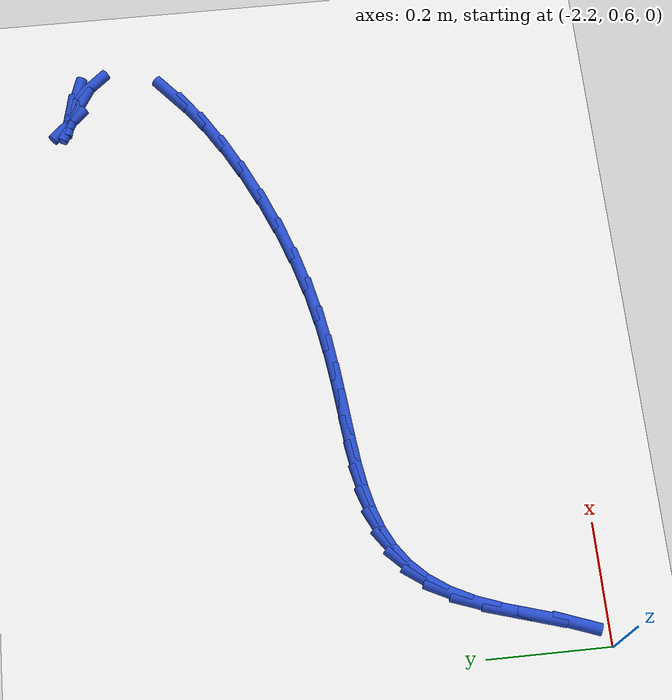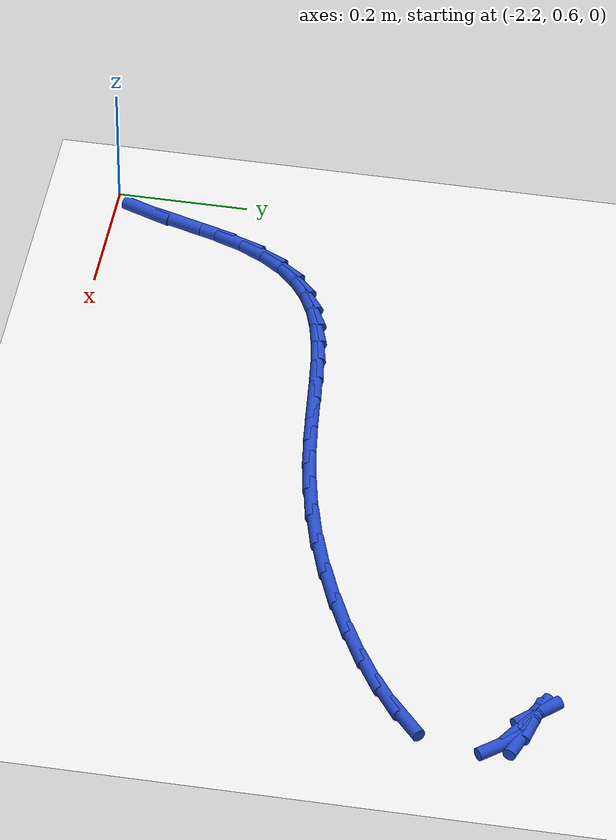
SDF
<sdf version="1.6">
 <world name="default">
  <model name="ground_plane">
   <static>1</static>
   <link name="link">
    <collision name="collision">
     <geometry><plane><normal>0 0 1</normal><size>100 100</size></plane></geometry>
     <surface><friction><ode><mu>100</mu><mu2>50</mu2></ode></friction></surface>
    </collision>
    <visual name="visual">
     <cast_shadows>0</cast_shadows>
     <geometry><plane><normal>0 0 1</normal><size>100 100</size></plane></geometry>
     <material>
      <script><uri>file://media/materials/scripts/gazebo.material</uri><name>Gazebo/WhiteGlow</name></script>
     </material>
    </visual>
   </link>
  </model>
  <model name="line">
   <link name="link_43">
    <pose>-1.1570098385927952 1.389143280055641 0.01 0 1.57 -0.3165778140580224</pose>
    <collision name="collision">
     <geometry><cylinder><radius>0.01</radius><length>0.08</length></cylinder></geometry>
    </collision>
    <visual name="visual">
     <material>
      <script><name>Gazebo/Blue</name><uri>file://media/materials/scripts/gazebo.material</uri></script>
     </material>
     <geometry><cylinder><radius>0.01</radius><length>0.08</length></cylinder></geometry>
    </visual>
   </link>
   <link name="link_44">
    <pose>-1.1902804068994681 1.4000425747041239 0.01 0 1.57 -0.21723465099847283</pose>
    <collision name="collision">
     <geometry><cylinder><radius>0.01</radius><length>0.08</length></cylinder></geometry>
    </collision>
    <visual name="visual">
     <material>
      <script><name>Gazebo/Blue</name><uri>file://media/materials/scripts/gazebo.material</uri></script>
     </material>
     <geometry><cylinder><radius>0.01</radius><length>0.08</length></cylinder></geometry>
    </visual>
   </link>
   <link name="link_45">
    <pose>-1.2066322150286655 1.4036517061660783 0.01 0 1.57 -0.8059865305686704</pose>
    <collision name="collision">
     <geometry><cylinder><radius>0.01</radius><length>0.08</length></cylinder></geometry>
    </collision>
    <visual name="visual">
     <material>
      <script><name>Gazebo/Blue</name><uri>file://media/materials/scripts/gazebo.material</uri></script>
     </material>
     <geometry><cylinder><radius>0.01</radius><length>0.08</length></cylinder></geometry>
    </visual>
   </link>
   <link name="link_46">
    <pose>-1.2020361313585717 1.39886236460846 0.01 0 1.57 -0.45744773224326546</pose>
    <collision name="collision">
     <geometry><cylinder><radius>0.01</radius><length>0.08</length></cylinder></geometry>
    </collision>
    <visual name="visual">
     <material>
      <script><name>Gazebo/Blue</name><uri>file://media/materials/scripts/gazebo.material</uri></script>
     </material>
     <geometry><cylinder><radius>0.01</radius><length>0.08</length></cylinder></geometry>
    </visual>
   </link>
   <link name="link_47">
    <pose>-1.1732487988447886 1.384691109133771 0.01 0 1.57 -0.5398095295319212</pose>
    <collision name="collision">
     <geometry><cylinder><radius>0.01</radius><length>0.08</length></cylinder></geometry>
    </collision>
    <visual name="visual">
     <material>
      <script><name>Gazebo/Blue</name><uri>file://media/materials/scripts/gazebo.material</uri></script>
     </material>
     <geometry><cylinder><radius>0.01</radius><length>0.08</length></cylinder></geometry>
    </visual>
   </link>
   <link name="link_48">
    <pose>-1.1378557610351032 1.3634846363657314 0.01 0 1.57 -0.8729499971255757</pose>
    <collision name="collision">
     <geometry><cylinder><radius>0.01</radius><length>0.08</length></cylinder></geometry>
    </collision>
    <visual name="visual">
     <material>
      <script><name>Gazebo/Blue</name><uri>file://media/materials/scripts/gazebo.material</uri></script>
     </material>
     <geometry><cylinder><radius>0.01</radius><length>0.08</length></cylinder></geometry>
    </visual>
   </link>
   <link name="link_53">
    <pose>-1.1641207812996137 1.2190325511779927 0.01 0 1.57 0.7139609230397266</pose>
    <collision name="collision">
     <geometry><cylinder><radius>0.01</radius><length>0.08</length></cylinder></geometry>
    </collision>
    <visual name="visual">
     <material>
      <script><name>Gazebo/Blue</name><uri>file://media/materials/scripts/gazebo.material</uri></script>
     </material>
     <geometry><cylinder><radius>0.01</radius><length>0.08</length></cylinder></geometry>
    </visual>
   </link>
   <link name="link_54">
    <pose>-1.2010580317236055 1.1870286605768579 0.01 0 1.57 0.6213254055115245</pose>
    <collision name="collision">
     <geometry><cylinder><radius>0.01</radius><length>0.08</length></cylinder></geometry>
    </collision>
    <visual name="visual">
     <material>
      <script><name>Gazebo/Blue</name><uri>file://media/materials/scripts/gazebo.material</uri></script>
     </material>
     <geometry><cylinder><radius>0.01</radius><length>0.08</length></cylinder></geometry>
    </visual>
   </link>
   <link name="link_55">
    <pose>-1.2451575643478734 1.155457283797192 0.01 0 1.57 0.5496056958077886</pose>
    <collision name="collision">
     <geometry><cylinder><radius>0.01</radius><length>0.08</length></cylinder></geometry>
    </collision>
    <visual name="visual">
     <material>
      <script><name>Gazebo/Blue</name><uri>file://media/materials/scripts/gazebo.material</uri></script>
     </material>
     <geometry><cylinder><radius>0.01</radius><length>0.08</length></cylinder></geometry>
    </visual>
   </link>
   <link name="link_56">
    <pose>-1.2949626077766645 1.1249485658429943 0.01 0 1.57 0.4897733787237614</pose>
    <collision name="collision">
     <geometry><cylinder><radius>0.01</radius><length>0.08</length></cylinder></geometry>
    </collision>
    <visual name="visual">
     <material>
      <script><name>Gazebo/Blue</name><uri>file://media/materials/scripts/gazebo.material</uri></script>
     </material>
     <geometry><cylinder><radius>0.01</radius><length>0.08</length></cylinder></geometry>
    </visual>
   </link>
   <link name="link_57">
    <pose>-1.3490163906142287 1.0961326517182635 0.01 0 1.57 0.43612069820958027</pose>
    <collision name="collision">
     <geometry><cylinder><radius>0.01</radius><length>0.08</length></cylinder></geometry>
    </collision>
    <visual name="visual">
     <material>
      <script><name>Gazebo/Blue</name><uri>file://media/materials/scripts/gazebo.material</uri></script>
     </material>
     <geometry><cylinder><radius>0.01</radius><length>0.08</length></cylinder></geometry>
    </visual>
   </link>
   <link name="link_58">
    <pose>-1.4058621414648134 1.0696396864269995 0.01 0 1.57 0.384463527308074</pose>
    <collision name="collision">
     <geometry><cylinder><radius>0.01</radius><length>0.08</length></cylinder></geometry>
    </collision>
    <visual name="visual">
     <material>
      <script><name>Gazebo/Blue</name><uri>file://media/materials/scripts/gazebo.material</uri></script>
     </material>
     <geometry><cylinder><radius>0.01</radius><length>0.08</length></cylinder></geometry>
    </visual>
   </link>
   <link name="link_59">
    <pose>-1.4640430889326659 1.046099814973201 0.01 0 1.57 0.3310764100350629</pose>
    <collision name="collision">
     <geometry><cylinder><radius>0.01</radius><length>0.08</length></cylinder></geometry>
    </collision>
    <visual name="visual">
     <material>
      <script><name>Gazebo/Blue</name><uri>file://media/materials/scripts/gazebo.material</uri></script>
     </material>
     <geometry><cylinder><radius>0.01</radius><length>0.08</length></cylinder></geometry>
    </visual>
   </link>
   <link name="link_60">
    <pose>-1.5221024616220364 1.0261431823608673 0.01 0 1.57 0.27234269560298263</pose>
    <collision name="collision">
     <geometry><cylinder><radius>0.01</radius><length>0.08</length></cylinder></geometry>
    </collision>
    <visual name="visual">
     <material>
      <script><name>Gazebo/Blue</name><uri>file://media/materials/scripts/gazebo.material</uri></script>
     </material>
     <geometry><cylinder><radius>0.01</radius><length>0.08</length></cylinder></geometry>
    </visual>
   </link>
   <link name="link_61">
    <pose>-1.5786220744940083 1.0103582768501222 0.01 0 1.57 0.21402211408506638</pose>
    <collision name="collision">
     <geometry><cylinder><radius>0.01</radius><length>0.08</length></cylinder></geometry>
    </collision>
    <visual name="visual">
     <material>
      <script><name>Gazebo/Blue</name><uri>file://media/materials/scripts/gazebo.material</uri></script>
     </material>
     <geometry><cylinder><radius>0.01</radius><length>0.08</length></cylinder></geometry>
    </visual>
   </link>
   <link name="link_62">
    <pose>-1.6328993216077003 0.9985610676644956 0.01 0 1.57 0.16542133441956647</pose>
    <collision name="collision">
     <geometry><cylinder><radius>0.01</radius><length>0.08</length></cylinder></geometry>
    </collision>
    <visual name="visual">
     <material>
      <script><name>Gazebo/Blue</name><uri>file://media/materials/scripts/gazebo.material</uri></script>
     </material>
     <geometry><cylinder><radius>0.01</radius><length>0.08</length></cylinder></geometry>
    </visual>
   </link>
   <link name="link_63">
    <pose>-1.684862985805638 0.9898858944829764 0.01 0 1.57 0.1291583888164905</pose>
    <collision name="collision">
     <geometry><cylinder><radius>0.01</radius><length>0.08</length></cylinder></geometry>
    </collision>
    <visual name="visual">
     <material>
      <script><name>Gazebo/Blue</name><uri>file://media/materials/scripts/gazebo.material</uri></script>
     </material>
     <geometry><cylinder><radius>0.01</radius><length>0.08</length></cylinder></geometry>
    </visual>
   </link>
   <link name="link_64">
    <pose>-1.7344635154815178 0.983443707465824 0.01 0 1.57 0.1076241426292096</pose>
    <collision name="collision">
     <geometry><cylinder><radius>0.01</radius><length>0.08</length></cylinder></geometry>
    </collision>
    <visual name="visual">
     <material>
      <script><name>Gazebo/Blue</name><uri>file://media/materials/scripts/gazebo.material</uri></script>
     </material>
     <geometry><cylinder><radius>0.01</radius><length>0.08</length></cylinder></geometry>
    </visual>
   </link>
   <link name="link_65">
    <pose>-1.781651359029034 0.9783454567732975 0.01 0 1.57 0.1034483168269459</pose>
    <collision name="collision">
     <geometry><cylinder><radius>0.01</radius><length>0.08</length></cylinder></geometry>
    </collision>
    <visual name="visual">
     <material>
      <script><name>Gazebo/Blue</name><uri>file://media/materials/scripts/gazebo.material</uri></script>
     </material>
     <geometry><cylinder><radius>0.01</radius><length>0.08</length></cylinder></geometry>
    </visual>
   </link>
   <link name="link_66">
    <pose>-1.8263769648418817 0.9737020925656564 0.01 0 1.57 0.11970610305795841</pose>
    <collision name="collision">
     <geometry><cylinder><radius>0.01</radius><length>0.08</length></cylinder></geometry>
    </collision>
    <visual name="visual">
     <material>
      <script><name>Gazebo/Blue</name><uri>file://media/materials/scripts/gazebo.material</uri></script>
     </material>
     <geometry><cylinder><radius>0.01</radius><length>0.08</length></cylinder></geometry>
    </visual>
   </link>
   <link name="link_67">
    <pose>-1.8685907813137566 0.9686245650031597 0.01 0 1.57 0.16004044790419905</pose>
    <collision name="collision">
     <geometry><cylinder><radius>0.01</radius><length>0.08</length></cylinder></geometry>
    </collision>
    <visual name="visual">
     <material>
      <script><name>Gazebo/Blue</name><uri>file://media/materials/scripts/gazebo.material</uri></script>
     </material>
     <geometry><cylinder><radius>0.01</radius><length>0.08</length></cylinder></geometry>
    </visual>
   </link>
   <link name="link_68">
    <pose>-1.9082432568383525 0.9622238242460667 0.01 0 1.57 0.22846288739029555</pose>
    <collision name="collision">
     <geometry><cylinder><radius>0.01</radius><length>0.08</length></cylinder></geometry>
    </collision>
    <visual name="visual">
     <material>
      <script><name>Gazebo/Blue</name><uri>file://media/materials/scripts/gazebo.material</uri></script>
     </material>
     <geometry><cylinder><radius>0.01</radius><length>0.08</length></cylinder></geometry>
    </visual>
   </link>
   <link name="link_69">
    <pose>-1.9452848398093665 0.953610820454637 0.01 0 1.57 0.3283831075032461</pose>
    <collision name="collision">
     <geometry><cylinder><radius>0.01</radius><length>0.08</length></cylinder></geometry>
    </collision>
    <visual name="visual">
     <material>
      <script><name>Gazebo/Blue</name><uri>file://media/materials/scripts/gazebo.material</uri></script>
     </material>
     <geometry><cylinder><radius>0.01</radius><length>0.08</length></cylinder></geometry>
    </visual>
   </link>
   <link name="link_70">
    <pose>-1.9796659786204909 0.9418965037891289 0.01 0 1.57 0.46033586480324795</pose>
    <collision name="collision">
     <geometry><cylinder><radius>0.01</radius><length>0.08</length></cylinder></geometry>
    </collision>
    <visual name="visual">
     <material>
      <script><name>Gazebo/Blue</name><uri>file://media/materials/scripts/gazebo.material</uri></script>
     </material>
     <geometry><cylinder><radius>0.01</radius><length>0.08</length></cylinder></geometry>
    </visual>
   </link>
   <link name="link_71">
    <pose>-2.0113371216654237 0.9261918244098029 0.01 0 1.57 0.6187122047595729</pose>
    <collision name="collision">
     <geometry><cylinder><radius>0.01</radius><length>0.08</length></cylinder></geometry>
    </collision>
    <visual name="visual">
     <material>
      <script><name>Gazebo/Blue</name><uri>file://media/materials/scripts/gazebo.material</uri></script>
     </material>
     <geometry><cylinder><radius>0.01</radius><length>0.08</length></cylinder></geometry>
    </visual>
   </link>
   <link name="link_72">
    <pose>-2.0402487173378585 0.9056077324769174 0.01 0 1.57 0.7901652112512412</pose>
    <collision name="collision">
     <geometry><cylinder><radius>0.01</radius><length>0.08</length></cylinder></geometry>
    </collision>
    <visual name="visual">
     <material>
      <script><name>Gazebo/Blue</name><uri>file://media/materials/scripts/gazebo.material</uri></script>
     </material>
     <geometry><cylinder><radius>0.01</radius><length>0.08</length></cylinder></geometry>
    </visual>
   </link>
   <link name="link_73">
    <pose>-2.066351214031491 0.8792551781507323 0.01 0 1.57 0.957294448054518</pose>
    <collision name="collision">
     <geometry><cylinder><radius>0.01</radius><length>0.08</length></cylinder></geometry>
    </collision>
    <visual name="visual">
     <material>
      <script><name>Gazebo/Blue</name><uri>file://media/materials/scripts/gazebo.material</uri></script>
     </material>
     <geometry><cylinder><radius>0.01</radius><length>0.08</length></cylinder></geometry>
    </visual>
   </link>
   <link name="link_74">
    <pose>-2.0895950601400153 0.846245111591506 0.01 0 1.57 1.1060185019705449</pose>
    <collision name="collision">
     <geometry><cylinder><radius>0.01</radius><length>0.08</length></cylinder></geometry>
    </collision>
    <visual name="visual">
     <material>
      <script><name>Gazebo/Blue</name><uri>file://media/materials/scripts/gazebo.material</uri></script>
     </material>
     <geometry><cylinder><radius>0.01</radius><length>0.08</length></cylinder></geometry>
    </visual>
   </link>
   <link name="link_75">
    <pose>-2.109930704057128 0.8056884829594981 0.01 0 1.57 1.2240671550056765</pose>
    <collision name="collision">
     <geometry><cylinder><radius>0.01</radius><length>0.08</length></cylinder></geometry>
    </collision>
    <visual name="visual">
     <material>
      <script><name>Gazebo/Blue</name><uri>file://media/materials/scripts/gazebo.material</uri></script>
     </material>
     <geometry><cylinder><radius>0.01</radius><length>0.08</length></cylinder></geometry>
    </visual>
   </link>
   <link name="link_76">
    <pose>-2.1274466192430586 0.757211752561746 0.01 0 1.57 1.2807468877456092</pose>
    <collision name="collision">
     <geometry><cylinder><radius>0.01</radius><length>0.08</length></cylinder></geometry>
    </collision>
    <visual name="visual">
     <material>
      <script><name>Gazebo/Blue</name><uri>file://media/materials/scripts/gazebo.material</uri></script>
     </material>
     <geometry><cylinder><radius>0.01</radius><length>0.08</length></cylinder></geometry>
    </visual>
   </link>
   <link name="link_77">
    <pose>-2.1432523965544554 0.7042551544792494 0.01 0 1.57 1.27973114985631</pose>
    <collision name="collision">
     <geometry><cylinder><radius>0.01</radius><length>0.08</length></cylinder></geometry>
    </collision>
    <visual name="visual">
     <material>
      <script><name>Gazebo/Blue</name><uri>file://media/materials/scripts/gazebo.material</uri></script>
     </material>
     <geometry><cylinder><radius>0.01</radius><length>0.08</length></cylinder></geometry>
    </visual>
   </link>
   <link name="link_78">
    <pose>-2.158915696429509 0.6519697679542762 0.01 0 1.57 1.2182674494885746</pose>
    <collision name="collision">
     <geometry><cylinder><radius>0.01</radius><length>0.08</length></cylinder></geometry>
    </collision>
    <visual name="visual">
     <material>
      <script><name>Gazebo/Blue</name><uri>file://media/materials/scripts/gazebo.material</uri></script>
     </material>
     <geometry><cylinder><radius>0.01</radius><length>0.08</length></cylinder></geometry>
    </visual>
   </link>
  </model>
 </world>
</sdf>
